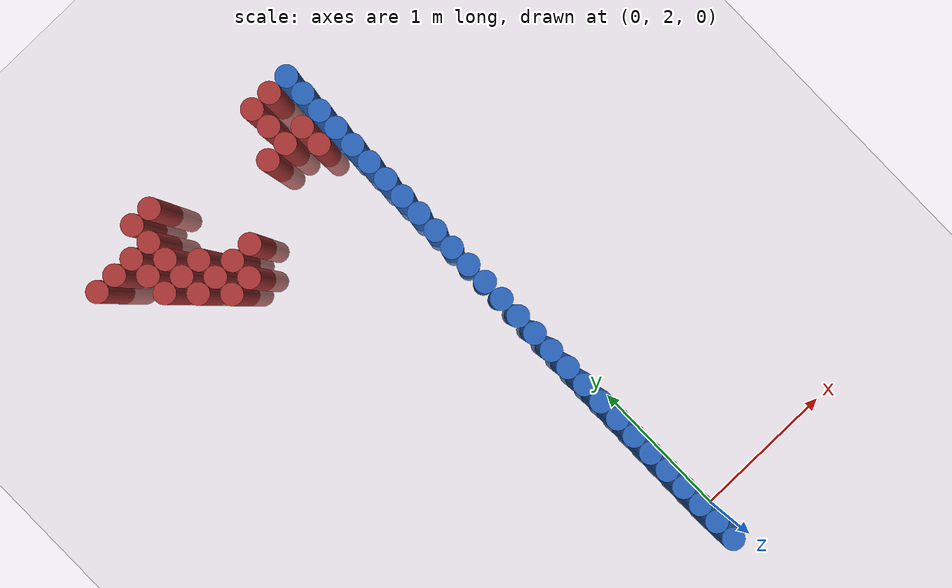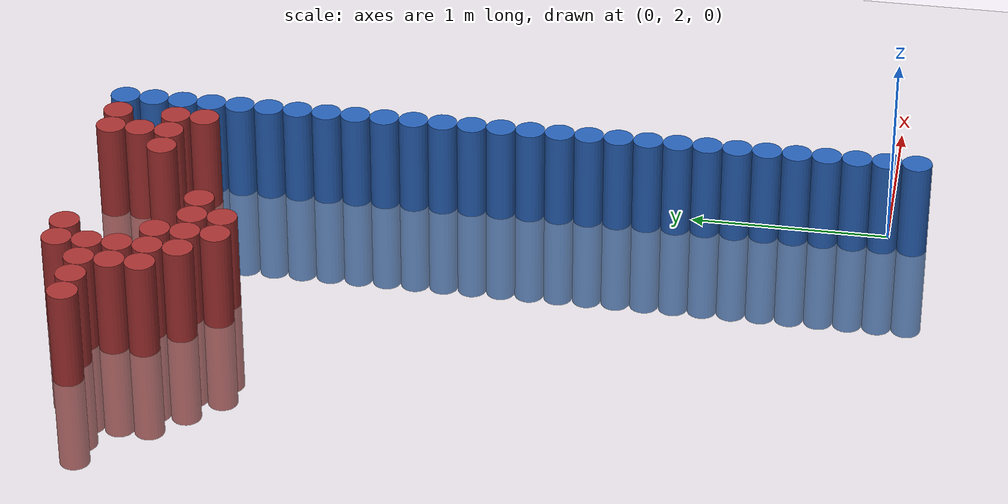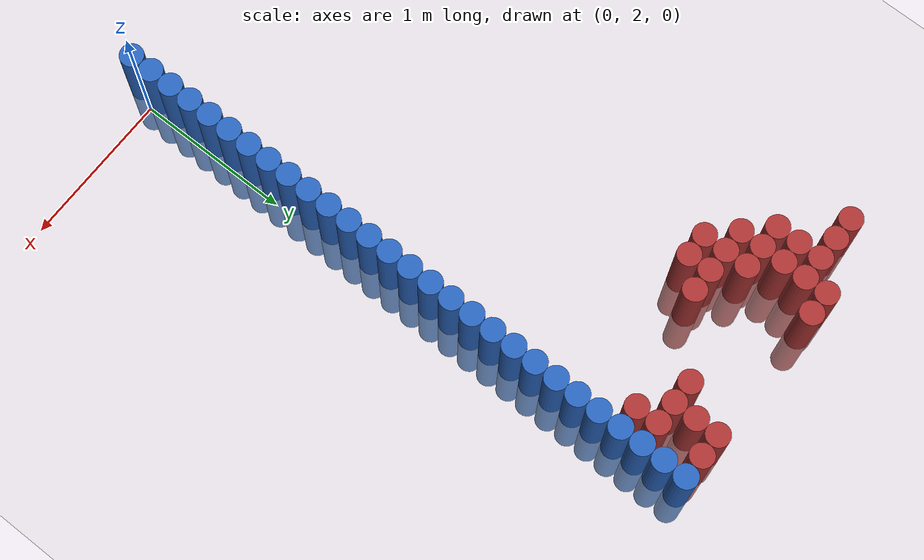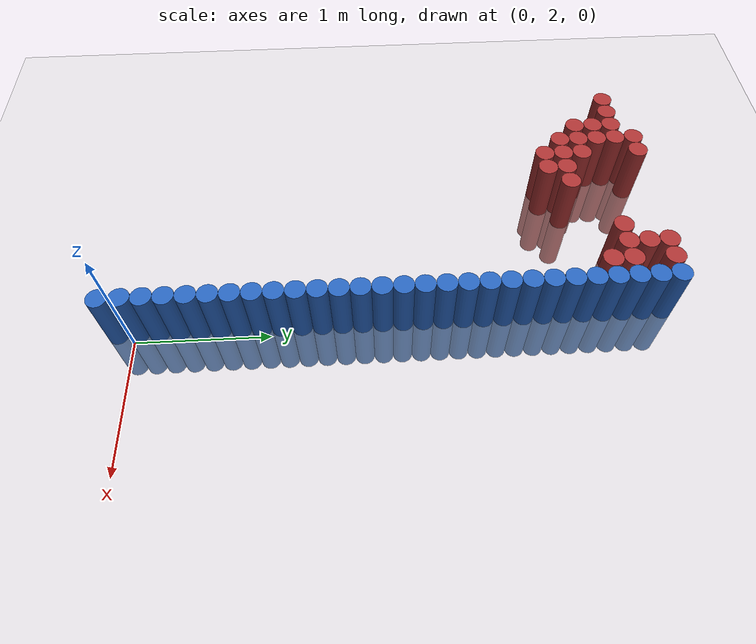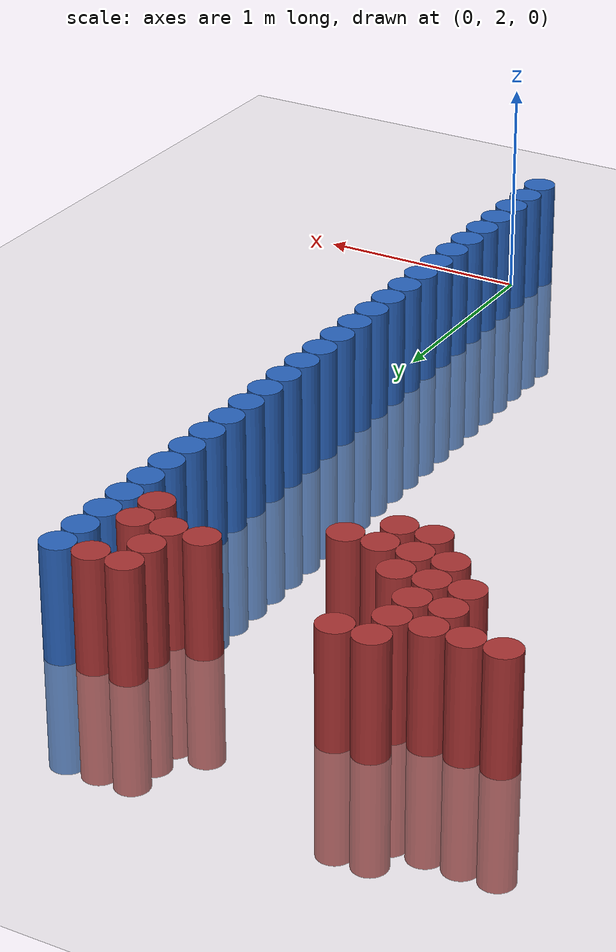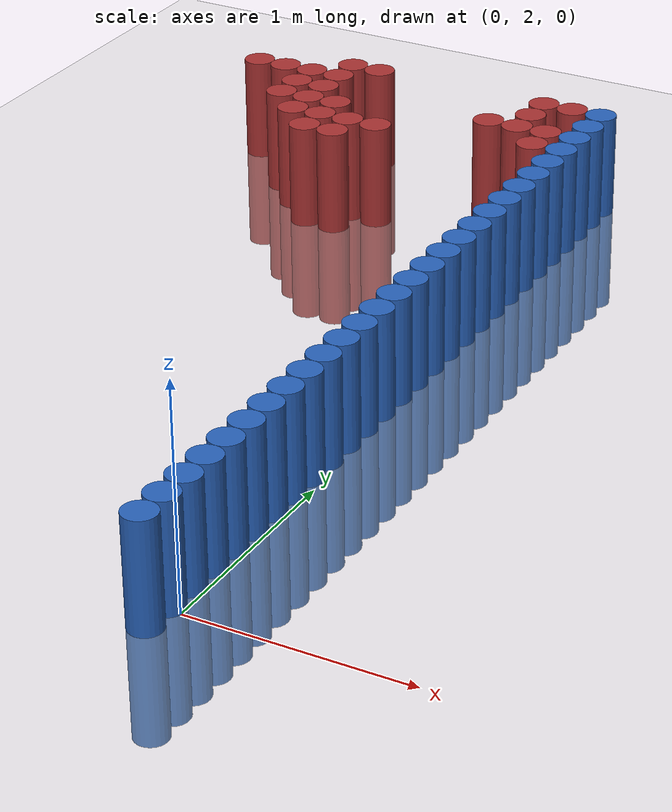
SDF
<sdf version="1.6">
 <world name="default">
  <model name="ground_plane">
   <static>1</static>
   <link name="link">
    <collision name="collision">
     <geometry><plane><normal>0 0 1</normal><size>100 100</size></plane></geometry>
     <surface><friction><ode><mu>100</mu><mu2>50</mu2></ode></friction></surface>
    </collision>
    <visual name="visual">
     <cast_shadows>0</cast_shadows>
     <geometry><plane><normal>0 0 1</normal><size>100 100</size></plane></geometry>
     <material>
      <script><uri>file://media/materials/scripts/gazebo.material</uri><name>Gazebo/Grey</name></script>
     </material>
    </visual>
   </link>
  </model>
  <model name="unit_cylinder_52">
   <static>1</static>
   <pose>-0.075000 1.875000 0.000000 0.000000 0.000000 0.000000</pose>
   <link name="link">
    <inertial>
     <mass>1</mass>
     <inertia><ixx>0.145833</ixx><ixy>0</ixy><ixz>0</ixz><iyy>0.145833</iyy><iyz>0</iyz><izz>0.125</izz></inertia>
    </inertial>
    <collision name="collision">
     <geometry><cylinder><radius>0.075000</radius><length>1</length></cylinder></geometry>
    </collision>
    <visual name="visual">
     <geometry><cylinder><radius>0.075000</radius><length>1</length></cylinder></geometry>
     <material>
      <ambient>0.152000 0.379000 0.720000 1</ambient>
      <diffuse>0.152000 0.379000 0.720000 1</diffuse>
     </material>
     <material>
      <script><name>Gazebo/Grey</name><uri>file://media/materials/scripts/gazebo.material</uri></script>
     </material>
    </visual>
   </link>
  </model>
  <model name="unit_cylinder_54">
   <static>1</static>
   <pose>-0.075000 2.025000 0.000000 0.000000 0.000000 0.000000</pose>
   <link name="link">
    <inertial>
     <mass>1</mass>
     <inertia><ixx>0.145833</ixx><ixy>0</ixy><ixz>0</ixz><iyy>0.145833</iyy><iyz>0</iyz><izz>0.125</izz></inertia>
    </inertial>
    <collision name="collision">
     <geometry><cylinder><radius>0.075000</radius><length>1</length></cylinder></geometry>
    </collision>
    <visual name="visual">
     <geometry><cylinder><radius>0.075000</radius><length>1</length></cylinder></geometry>
     <material>
      <ambient>0.152000 0.379000 0.720000 1</ambient>
      <diffuse>0.152000 0.379000 0.720000 1</diffuse>
     </material>
     <material>
      <script><name>Gazebo/Grey</name><uri>file://media/materials/scripts/gazebo.material</uri></script>
     </material>
    </visual>
   </link>
  </model>
  <model name="unit_cylinder_56">
   <static>1</static>
   <pose>-0.075000 2.175000 0.000000 0.000000 0.000000 0.000000</pose>
   <link name="link">
    <inertial>
     <mass>1</mass>
     <inertia><ixx>0.145833</ixx><ixy>0</ixy><ixz>0</ixz><iyy>0.145833</iyy><iyz>0</iyz><izz>0.125</izz></inertia>
    </inertial>
    <collision name="collision">
     <geometry><cylinder><radius>0.075000</radius><length>1</length></cylinder></geometry>
    </collision>
    <visual name="visual">
     <geometry><cylinder><radius>0.075000</radius><length>1</length></cylinder></geometry>
     <material>
      <ambient>0.152000 0.379000 0.720000 1</ambient>
      <diffuse>0.152000 0.379000 0.720000 1</diffuse>
     </material>
     <material>
      <script><name>Gazebo/Grey</name><uri>file://media/materials/scripts/gazebo.material</uri></script>
     </material>
    </visual>
   </link>
  </model>
  <model name="unit_cylinder_58">
   <static>1</static>
   <pose>-0.075000 2.325000 0.000000 0.000000 0.000000 0.000000</pose>
   <link name="link">
    <inertial>
     <mass>1</mass>
     <inertia><ixx>0.145833</ixx><ixy>0</ixy><ixz>0</ixz><iyy>0.145833</iyy><iyz>0</iyz><izz>0.125</izz></inertia>
    </inertial>
    <collision name="collision">
     <geometry><cylinder><radius>0.075000</radius><length>1</length></cylinder></geometry>
    </collision>
    <visual name="visual">
     <geometry><cylinder><radius>0.075000</radius><length>1</length></cylinder></geometry>
     <material>
      <ambient>0.152000 0.379000 0.720000 1</ambient>
      <diffuse>0.152000 0.379000 0.720000 1</diffuse>
     </material>
     <material>
      <script><name>Gazebo/Grey</name><uri>file://media/materials/scripts/gazebo.material</uri></script>
     </material>
    </visual>
   </link>
  </model>
  <model name="unit_cylinder_60">
   <static>1</static>
   <pose>-0.075000 2.475000 0.000000 0.000000 0.000000 0.000000</pose>
   <link name="link">
    <inertial>
     <mass>1</mass>
     <inertia><ixx>0.145833</ixx><ixy>0</ixy><ixz>0</ixz><iyy>0.145833</iyy><iyz>0</iyz><izz>0.125</izz></inertia>
    </inertial>
    <collision name="collision">
     <geometry><cylinder><radius>0.075000</radius><length>1</length></cylinder></geometry>
    </collision>
    <visual name="visual">
     <geometry><cylinder><radius>0.075000</radius><length>1</length></cylinder></geometry>
     <material>
      <ambient>0.152000 0.379000 0.720000 1</ambient>
      <diffuse>0.152000 0.379000 0.720000 1</diffuse>
     </material>
     <material>
      <script><name>Gazebo/Grey</name><uri>file://media/materials/scripts/gazebo.material</uri></script>
     </material>
    </visual>
   </link>
  </model>
  <model name="unit_cylinder_62">
   <static>1</static>
   <pose>-0.075000 2.625000 0.000000 0.000000 0.000000 0.000000</pose>
   <link name="link">
    <inertial>
     <mass>1</mass>
     <inertia><ixx>0.145833</ixx><ixy>0</ixy><ixz>0</ixz><iyy>0.145833</iyy><iyz>0</iyz><izz>0.125</izz></inertia>
    </inertial>
    <collision name="collision">
     <geometry><cylinder><radius>0.075000</radius><length>1</length></cylinder></geometry>
    </collision>
    <visual name="visual">
     <geometry><cylinder><radius>0.075000</radius><length>1</length></cylinder></geometry>
     <material>
      <ambient>0.152000 0.379000 0.720000 1</ambient>
      <diffuse>0.152000 0.379000 0.720000 1</diffuse>
     </material>
     <material>
      <script><name>Gazebo/Grey</name><uri>file://media/materials/scripts/gazebo.material</uri></script>
     </material>
    </visual>
   </link>
  </model>
  <model name="unit_cylinder_64">
   <static>1</static>
   <pose>-0.075000 2.775000 0.000000 0.000000 0.000000 0.000000</pose>
   <link name="link">
    <inertial>
     <mass>1</mass>
     <inertia><ixx>0.145833</ixx><ixy>0</ixy><ixz>0</ixz><iyy>0.145833</iyy><iyz>0</iyz><izz>0.125</izz></inertia>
    </inertial>
    <collision name="collision">
     <geometry><cylinder><radius>0.075000</radius><length>1</length></cylinder></geometry>
    </collision>
    <visual name="visual">
     <geometry><cylinder><radius>0.075000</radius><length>1</length></cylinder></geometry>
     <material>
      <ambient>0.152000 0.379000 0.720000 1</ambient>
      <diffuse>0.152000 0.379000 0.720000 1</diffuse>
     </material>
     <material>
      <script><name>Gazebo/Grey</name><uri>file://media/materials/scripts/gazebo.material</uri></script>
     </material>
    </visual>
   </link>
  </model>
  <model name="unit_cylinder_66">
   <static>1</static>
   <pose>-0.075000 2.925000 0.000000 0.000000 0.000000 0.000000</pose>
   <link name="link">
    <inertial>
     <mass>1</mass>
     <inertia><ixx>0.145833</ixx><ixy>0</ixy><ixz>0</ixz><iyy>0.145833</iyy><iyz>0</iyz><izz>0.125</izz></inertia>
    </inertial>
    <collision name="collision">
     <geometry><cylinder><radius>0.075000</radius><length>1</length></cylinder></geometry>
    </collision>
    <visual name="visual">
     <geometry><cylinder><radius>0.075000</radius><length>1</length></cylinder></geometry>
     <material>
      <ambient>0.152000 0.379000 0.720000 1</ambient>
      <diffuse>0.152000 0.379000 0.720000 1</diffuse>
     </material>
     <material>
      <script><name>Gazebo/Grey</name><uri>file://media/materials/scripts/gazebo.material</uri></script>
     </material>
    </visual>
   </link>
  </model>
  <model name="unit_cylinder_68">
   <static>1</static>
   <pose>-0.075000 3.075000 0.000000 0.000000 0.000000 0.000000</pose>
   <link name="link">
    <inertial>
     <mass>1</mass>
     <inertia><ixx>0.145833</ixx><ixy>0</ixy><ixz>0</ixz><iyy>0.145833</iyy><iyz>0</iyz><izz>0.125</izz></inertia>
    </inertial>
    <collision name="collision">
     <geometry><cylinder><radius>0.075000</radius><length>1</length></cylinder></geometry>
    </collision>
    <visual name="visual">
     <geometry><cylinder><radius>0.075000</radius><length>1</length></cylinder></geometry>
     <material>
      <ambient>0.152000 0.379000 0.720000 1</ambient>
      <diffuse>0.152000 0.379000 0.720000 1</diffuse>
     </material>
     <material>
      <script><name>Gazebo/Grey</name><uri>file://media/materials/scripts/gazebo.material</uri></script>
     </material>
    </visual>
   </link>
  </model>
  <model name="unit_cylinder_70">
   <static>1</static>
   <pose>-0.075000 3.225000 0.000000 0.000000 0.000000 0.000000</pose>
   <link name="link">
    <inertial>
     <mass>1</mass>
     <inertia><ixx>0.145833</ixx><ixy>0</ixy><ixz>0</ixz><iyy>0.145833</iyy><iyz>0</iyz><izz>0.125</izz></inertia>
    </inertial>
    <collision name="collision">
     <geometry><cylinder><radius>0.075000</radius><length>1</length></cylinder></geometry>
    </collision>
    <visual name="visual">
     <geometry><cylinder><radius>0.075000</radius><length>1</length></cylinder></geometry>
     <material>
      <ambient>0.152000 0.379000 0.720000 1</ambient>
      <diffuse>0.152000 0.379000 0.720000 1</diffuse>
     </material>
     <material>
      <script><name>Gazebo/Grey</name><uri>file://media/materials/scripts/gazebo.material</uri></script>
     </material>
    </visual>
   </link>
  </model>
  <model name="unit_cylinder_72">
   <static>1</static>
   <pose>-0.075000 3.375000 0.000000 0.000000 0.000000 0.000000</pose>
   <link name="link">
    <inertial>
     <mass>1</mass>
     <inertia><ixx>0.145833</ixx><ixy>0</ixy><ixz>0</ixz><iyy>0.145833</iyy><iyz>0</iyz><izz>0.125</izz></inertia>
    </inertial>
    <collision name="collision">
     <geometry><cylinder><radius>0.075000</radius><length>1</length></cylinder></geometry>
    </collision>
    <visual name="visual">
     <geometry><cylinder><radius>0.075000</radius><length>1</length></cylinder></geometry>
     <material>
      <ambient>0.152000 0.379000 0.720000 1</ambient>
      <diffuse>0.152000 0.379000 0.720000 1</diffuse>
     </material>
     <material>
      <script><name>Gazebo/Grey</name><uri>file://media/materials/scripts/gazebo.material</uri></script>
     </material>
    </visual>
   </link>
  </model>
  <model name="unit_cylinder_74">
   <static>1</static>
   <pose>-0.075000 3.525000 0.000000 0.000000 0.000000 0.000000</pose>
   <link name="link">
    <inertial>
     <mass>1</mass>
     <inertia><ixx>0.145833</ixx><ixy>0</ixy><ixz>0</ixz><iyy>0.145833</iyy><iyz>0</iyz><izz>0.125</izz></inertia>
    </inertial>
    <collision name="collision">
     <geometry><cylinder><radius>0.075000</radius><length>1</length></cylinder></geometry>
    </collision>
    <visual name="visual">
     <geometry><cylinder><radius>0.075000</radius><length>1</length></cylinder></geometry>
     <material>
      <ambient>0.152000 0.379000 0.720000 1</ambient>
      <diffuse>0.152000 0.379000 0.720000 1</diffuse>
     </material>
     <material>
      <script><name>Gazebo/Grey</name><uri>file://media/materials/scripts/gazebo.material</uri></script>
     </material>
    </visual>
   </link>
  </model>
  <model name="unit_cylinder_76">
   <static>1</static>
   <pose>-0.075000 3.675000 0.000000 0.000000 0.000000 0.000000</pose>
   <link name="link">
    <inertial>
     <mass>1</mass>
     <inertia><ixx>0.145833</ixx><ixy>0</ixy><ixz>0</ixz><iyy>0.145833</iyy><iyz>0</iyz><izz>0.125</izz></inertia>
    </inertial>
    <collision name="collision">
     <geometry><cylinder><radius>0.075000</radius><length>1</length></cylinder></geometry>
    </collision>
    <visual name="visual">
     <geometry><cylinder><radius>0.075000</radius><length>1</length></cylinder></geometry>
     <material>
      <ambient>0.152000 0.379000 0.720000 1</ambient>
      <diffuse>0.152000 0.379000 0.720000 1</diffuse>
     </material>
     <material>
      <script><name>Gazebo/Grey</name><uri>file://media/materials/scripts/gazebo.material</uri></script>
     </material>
    </visual>
   </link>
  </model>
  <model name="unit_cylinder_78">
   <static>1</static>
   <pose>-0.075000 3.825000 0.000000 0.000000 0.000000 0.000000</pose>
   <link name="link">
    <inertial>
     <mass>1</mass>
     <inertia><ixx>0.145833</ixx><ixy>0</ixy><ixz>0</ixz><iyy>0.145833</iyy><iyz>0</iyz><izz>0.125</izz></inertia>
    </inertial>
    <collision name="collision">
     <geometry><cylinder><radius>0.075000</radius><length>1</length></cylinder></geometry>
    </collision>
    <visual name="visual">
     <geometry><cylinder><radius>0.075000</radius><length>1</length></cylinder></geometry>
     <material>
      <ambient>0.152000 0.379000 0.720000 1</ambient>
      <diffuse>0.152000 0.379000 0.720000 1</diffuse>
     </material>
     <material>
      <script><name>Gazebo/Grey</name><uri>file://media/materials/scripts/gazebo.material</uri></script>
     </material>
    </visual>
   </link>
  </model>
  <model name="unit_cylinder_80">
   <static>1</static>
   <pose>-0.075000 3.975000 0.000000 0.000000 0.000000 0.000000</pose>
   <link name="link">
    <inertial>
     <mass>1</mass>
     <inertia><ixx>0.145833</ixx><ixy>0</ixy><ixz>0</ixz><iyy>0.145833</iyy><iyz>0</iyz><izz>0.125</izz></inertia>
    </inertial>
    <collision name="collision">
     <geometry><cylinder><radius>0.075000</radius><length>1</length></cylinder></geometry>
    </collision>
    <visual name="visual">
     <geometry><cylinder><radius>0.075000</radius><length>1</length></cylinder></geometry>
     <material>
      <ambient>0.152000 0.379000 0.720000 1</ambient>
      <diffuse>0.152000 0.379000 0.720000 1</diffuse>
     </material>
     <material>
      <script><name>Gazebo/Grey</name><uri>file://media/materials/scripts/gazebo.material</uri></script>
     </material>
    </visual>
   </link>
  </model>
  <model name="unit_cylinder_82">
   <static>1</static>
   <pose>-0.075000 4.125000 0.000000 0.000000 0.000000 0.000000</pose>
   <link name="link">
    <inertial>
     <mass>1</mass>
     <inertia><ixx>0.145833</ixx><ixy>0</ixy><ixz>0</ixz><iyy>0.145833</iyy><iyz>0</iyz><izz>0.125</izz></inertia>
    </inertial>
    <collision name="collision">
     <geometry><cylinder><radius>0.075000</radius><length>1</length></cylinder></geometry>
    </collision>
    <visual name="visual">
     <geometry><cylinder><radius>0.075000</radius><length>1</length></cylinder></geometry>
     <material>
      <ambient>0.152000 0.379000 0.720000 1</ambient>
      <diffuse>0.152000 0.379000 0.720000 1</diffuse>
     </material>
     <material>
      <script><name>Gazebo/Grey</name><uri>file://media/materials/scripts/gazebo.material</uri></script>
     </material>
    </visual>
   </link>
  </model>
  <model name="unit_cylinder_84">
   <static>1</static>
   <pose>-0.075000 4.275000 0.000000 0.000000 0.000000 0.000000</pose>
   <link name="link">
    <inertial>
     <mass>1</mass>
     <inertia><ixx>0.145833</ixx><ixy>0</ixy><ixz>0</ixz><iyy>0.145833</iyy><iyz>0</iyz><izz>0.125</izz></inertia>
    </inertial>
    <collision name="collision">
     <geometry><cylinder><radius>0.075000</radius><length>1</length></cylinder></geometry>
    </collision>
    <visual name="visual">
     <geometry><cylinder><radius>0.075000</radius><length>1</length></cylinder></geometry>
     <material>
      <ambient>0.152000 0.379000 0.720000 1</ambient>
      <diffuse>0.152000 0.379000 0.720000 1</diffuse>
     </material>
     <material>
      <script><name>Gazebo/Grey</name><uri>file://media/materials/scripts/gazebo.material</uri></script>
     </material>
    </visual>
   </link>
  </model>
  <model name="unit_cylinder_86">
   <static>1</static>
   <pose>-0.075000 4.425000 0.000000 0.000000 0.000000 0.000000</pose>
   <link name="link">
    <inertial>
     <mass>1</mass>
     <inertia><ixx>0.145833</ixx><ixy>0</ixy><ixz>0</ixz><iyy>0.145833</iyy><iyz>0</iyz><izz>0.125</izz></inertia>
    </inertial>
    <collision name="collision">
     <geometry><cylinder><radius>0.075000</radius><length>1</length></cylinder></geometry>
    </collision>
    <visual name="visual">
     <geometry><cylinder><radius>0.075000</radius><length>1</length></cylinder></geometry>
     <material>
      <ambient>0.152000 0.379000 0.720000 1</ambient>
      <diffuse>0.152000 0.379000 0.720000 1</diffuse>
     </material>
     <material>
      <script><name>Gazebo/Grey</name><uri>file://media/materials/scripts/gazebo.material</uri></script>
     </material>
    </visual>
   </link>
  </model>
  <model name="unit_cylinder_88">
   <static>1</static>
   <pose>-0.075000 4.575000 0.000000 0.000000 0.000000 0.000000</pose>
   <link name="link">
    <inertial>
     <mass>1</mass>
     <inertia><ixx>0.145833</ixx><ixy>0</ixy><ixz>0</ixz><iyy>0.145833</iyy><iyz>0</iyz><izz>0.125</izz></inertia>
    </inertial>
    <collision name="collision">
     <geometry><cylinder><radius>0.075000</radius><length>1</length></cylinder></geometry>
    </collision>
    <visual name="visual">
     <geometry><cylinder><radius>0.075000</radius><length>1</length></cylinder></geometry>
     <material>
      <ambient>0.152000 0.379000 0.720000 1</ambient>
      <diffuse>0.152000 0.379000 0.720000 1</diffuse>
     </material>
     <material>
      <script><name>Gazebo/Grey</name><uri>file://media/materials/scripts/gazebo.material</uri></script>
     </material>
    </visual>
   </link>
  </model>
  <model name="unit_cylinder_90">
   <static>1</static>
   <pose>-0.075000 4.725000 0.000000 0.000000 0.000000 0.000000</pose>
   <link name="link">
    <inertial>
     <mass>1</mass>
     <inertia><ixx>0.145833</ixx><ixy>0</ixy><ixz>0</ixz><iyy>0.145833</iyy><iyz>0</iyz><izz>0.125</izz></inertia>
    </inertial>
    <collision name="collision">
     <geometry><cylinder><radius>0.075000</radius><length>1</length></cylinder></geometry>
    </collision>
    <visual name="visual">
     <geometry><cylinder><radius>0.075000</radius><length>1</length></cylinder></geometry>
     <material>
      <ambient>0.152000 0.379000 0.720000 1</ambient>
      <diffuse>0.152000 0.379000 0.720000 1</diffuse>
     </material>
     <material>
      <script><name>Gazebo/Grey</name><uri>file://media/materials/scripts/gazebo.material</uri></script>
     </material>
    </visual>
   </link>
  </model>
  <model name="unit_cylinder_92">
   <static>1</static>
   <pose>-0.075000 4.875000 0.000000 0.000000 0.000000 0.000000</pose>
   <link name="link">
    <inertial>
     <mass>1</mass>
     <inertia><ixx>0.145833</ixx><ixy>0</ixy><ixz>0</ixz><iyy>0.145833</iyy><iyz>0</iyz><izz>0.125</izz></inertia>
    </inertial>
    <collision name="collision">
     <geometry><cylinder><radius>0.075000</radius><length>1</length></cylinder></geometry>
    </collision>
    <visual name="visual">
     <geometry><cylinder><radius>0.075000</radius><length>1</length></cylinder></geometry>
     <material>
      <ambient>0.152000 0.379000 0.720000 1</ambient>
      <diffuse>0.152000 0.379000 0.720000 1</diffuse>
     </material>
     <material>
      <script><name>Gazebo/Grey</name><uri>file://media/materials/scripts/gazebo.material</uri></script>
     </material>
    </visual>
   </link>
  </model>
  <model name="unit_cylinder_94">
   <static>1</static>
   <pose>-0.075000 5.025000 0.000000 0.000000 0.000000 0.000000</pose>
   <link name="link">
    <inertial>
     <mass>1</mass>
     <inertia><ixx>0.145833</ixx><ixy>0</ixy><ixz>0</ixz><iyy>0.145833</iyy><iyz>0</iyz><izz>0.125</izz></inertia>
    </inertial>
    <collision name="collision">
     <geometry><cylinder><radius>0.075000</radius><length>1</length></cylinder></geometry>
    </collision>
    <visual name="visual">
     <geometry><cylinder><radius>0.075000</radius><length>1</length></cylinder></geometry>
     <material>
      <ambient>0.152000 0.379000 0.720000 1</ambient>
      <diffuse>0.152000 0.379000 0.720000 1</diffuse>
     </material>
     <material>
      <script><name>Gazebo/Grey</name><uri>file://media/materials/scripts/gazebo.material</uri></script>
     </material>
    </visual>
   </link>
  </model>
  <model name="unit_cylinder_225">
   <static>1</static>
   <pose>-1.875000 5.775000 0.000000 0.000000 0.000000 0.000000</pose>
   <link name="link">
    <inertial>
     <mass>1</mass>
     <inertia><ixx>0.145833</ixx><ixy>0</ixy><ixz>0</ixz><iyy>0.145833</iyy><iyz>0</iyz><izz>0.125</izz></inertia>
    </inertial>
    <collision name="collision">
     <geometry><cylinder><radius>0.075000</radius><length>1</length></cylinder></geometry>
    </collision>
    <visual name="visual">
     <geometry><cylinder><radius>0.075000</radius><length>1</length></cylinder></geometry>
     <material>
      <ambient>0.648000 0.192000 0.192000 1</ambient>
      <diffuse>0.648000 0.192000 0.192000 1</diffuse>
     </material>
     <material>
      <script><name>Gazebo/Grey</name><uri>file://media/materials/scripts/gazebo.material</uri></script>
     </material>
    </visual>
   </link>
  </model>
  <model name="unit_cylinder_234">
   <static>1</static>
   <pose>-1.725000 5.775000 0.000000 0.000000 0.000000 0.000000</pose>
   <link name="link">
    <inertial>
     <mass>1</mass>
     <inertia><ixx>0.145833</ixx><ixy>0</ixy><ixz>0</ixz><iyy>0.145833</iyy><iyz>0</iyz><izz>0.125</izz></inertia>
    </inertial>
    <collision name="collision">
     <geometry><cylinder><radius>0.075000</radius><length>1</length></cylinder></geometry>
    </collision>
    <visual name="visual">
     <geometry><cylinder><radius>0.075000</radius><length>1</length></cylinder></geometry>
     <material>
      <ambient>0.648000 0.192000 0.192000 1</ambient>
      <diffuse>0.648000 0.192000 0.192000 1</diffuse>
     </material>
     <material>
      <script><name>Gazebo/Grey</name><uri>file://media/materials/scripts/gazebo.material</uri></script>
     </material>
    </visual>
   </link>
  </model>
  <model name="unit_cylinder_241">
   <static>1</static>
   <pose>-1.575000 5.475000 0.000000 0.000000 0.000000 0.000000</pose>
   <link name="link">
    <inertial>
     <mass>1</mass>
     <inertia><ixx>0.145833</ixx><ixy>0</ixy><ixz>0</ixz><iyy>0.145833</iyy><iyz>0</iyz><izz>0.125</izz></inertia>
    </inertial>
    <collision name="collision">
     <geometry><cylinder><radius>0.075000</radius><length>1</length></cylinder></geometry>
    </collision>
    <visual name="visual">
     <geometry><cylinder><radius>0.075000</radius><length>1</length></cylinder></geometry>
     <material>
      <ambient>0.648000 0.192000 0.192000 1</ambient>
      <diffuse>0.648000 0.192000 0.192000 1</diffuse>
     </material>
     <material>
      <script><name>Gazebo/Grey</name><uri>file://media/materials/scripts/gazebo.material</uri></script>
     </material>
    </visual>
   </link>
  </model>
  <model name="unit_cylinder_242">
   <static>1</static>
   <pose>-1.575000 5.625000 0.000000 0.000000 0.000000 0.000000</pose>
   <link name="link">
    <inertial>
     <mass>1</mass>
     <inertia><ixx>0.145833</ixx><ixy>0</ixy><ixz>0</ixz><iyy>0.145833</iyy><iyz>0</iyz><izz>0.125</izz></inertia>
    </inertial>
    <collision name="collision">
     <geometry><cylinder><radius>0.075000</radius><length>1</length></cylinder></geometry>
    </collision>
    <visual name="visual">
     <geometry><cylinder><radius>0.075000</radius><length>1</length></cylinder></geometry>
     <material>
      <ambient>0.648000 0.192000 0.192000 1</ambient>
      <diffuse>0.648000 0.192000 0.192000 1</diffuse>
     </material>
     <material>
      <script><name>Gazebo/Grey</name><uri>file://media/materials/scripts/gazebo.material</uri></script>
     </material>
    </visual>
   </link>
  </model>
  <model name="unit_cylinder_243">
   <static>1</static>
   <pose>-1.575000 5.775000 0.000000 0.000000 0.000000 0.000000</pose>
   <link name="link">
    <inertial>
     <mass>1</mass>
     <inertia><ixx>0.145833</ixx><ixy>0</ixy><ixz>0</ixz><iyy>0.145833</iyy><iyz>0</iyz><izz>0.125</izz></inertia>
    </inertial>
    <collision name="collision">
     <geometry><cylinder><radius>0.075000</radius><length>1</length></cylinder></geometry>
    </collision>
    <visual name="visual">
     <geometry><cylinder><radius>0.075000</radius><length>1</length></cylinder></geometry>
     <material>
      <ambient>0.648000 0.192000 0.192000 1</ambient>
      <diffuse>0.648000 0.192000 0.192000 1</diffuse>
     </material>
     <material>
      <script><name>Gazebo/Grey</name><uri>file://media/materials/scripts/gazebo.material</uri></script>
     </material>
    </visual>
   </link>
  </model>
  <model name="unit_cylinder_249">
   <static>1</static>
   <pose>-1.425000 5.325000 0.000000 0.000000 0.000000 0.000000</pose>
   <link name="link">
    <inertial>
     <mass>1</mass>
     <inertia><ixx>0.145833</ixx><ixy>0</ixy><ixz>0</ixz><iyy>0.145833</iyy><iyz>0</iyz><izz>0.125</izz></inertia>
    </inertial>
    <collision name="collision">
     <geometry><cylinder><radius>0.075000</radius><length>1</length></cylinder></geometry>
    </collision>
    <visual name="visual">
     <geometry><cylinder><radius>0.075000</radius><length>1</length></cylinder></geometry>
     <material>
      <ambient>0.648000 0.192000 0.192000 1</ambient>
      <diffuse>0.648000 0.192000 0.192000 1</diffuse>
     </material>
     <material>
      <script><name>Gazebo/Grey</name><uri>file://media/materials/scripts/gazebo.material</uri></script>
     </material>
    </visual>
   </link>
  </model>
  <model name="unit_cylinder_250">
   <static>1</static>
   <pose>-1.425000 5.475000 0.000000 0.000000 0.000000 0.000000</pose>
   <link name="link">
    <inertial>
     <mass>1</mass>
     <inertia><ixx>0.145833</ixx><ixy>0</ixy><ixz>0</ixz><iyy>0.145833</iyy><iyz>0</iyz><izz>0.125</izz></inertia>
    </inertial>
    <collision name="collision">
     <geometry><cylinder><radius>0.075000</radius><length>1</length></cylinder></geometry>
    </collision>
    <visual name="visual">
     <geometry><cylinder><radius>0.075000</radius><length>1</length></cylinder></geometry>
     <material>
      <ambient>0.648000 0.192000 0.192000 1</ambient>
      <diffuse>0.648000 0.192000 0.192000 1</diffuse>
     </material>
     <material>
      <script><name>Gazebo/Grey</name><uri>file://media/materials/scripts/gazebo.material</uri></script>
     </material>
    </visual>
   </link>
  </model>
  <model name="unit_cylinder_251">
   <static>1</static>
   <pose>-1.425000 5.625000 0.000000 0.000000 0.000000 0.000000</pose>
   <link name="link">
    <inertial>
     <mass>1</mass>
     <inertia><ixx>0.145833</ixx><ixy>0</ixy><ixz>0</ixz><iyy>0.145833</iyy><iyz>0</iyz><izz>0.125</izz></inertia>
    </inertial>
    <collision name="collision">
     <geometry><cylinder><radius>0.075000</radius><length>1</length></cylinder></geometry>
    </collision>
    <visual name="visual">
     <geometry><cylinder><radius>0.075000</radius><length>1</length></cylinder></geometry>
     <material>
      <ambient>0.648000 0.192000 0.192000 1</ambient>
      <diffuse>0.648000 0.192000 0.192000 1</diffuse>
     </material>
     <material>
      <script><name>Gazebo/Grey</name><uri>file://media/materials/scripts/gazebo.material</uri></script>
     </material>
    </visual>
   </link>
  </model>
  <model name="unit_cylinder_252">
   <static>1</static>
   <pose>-1.425000 5.775000 0.000000 0.000000 0.000000 0.000000</pose>
   <link name="link">
    <inertial>
     <mass>1</mass>
     <inertia><ixx>0.145833</ixx><ixy>0</ixy><ixz>0</ixz><iyy>0.145833</iyy><iyz>0</iyz><izz>0.125</izz></inertia>
    </inertial>
    <collision name="collision">
     <geometry><cylinder><radius>0.075000</radius><length>1</length></cylinder></geometry>
    </collision>
    <visual name="visual">
     <geometry><cylinder><radius>0.075000</radius><length>1</length></cylinder></geometry>
     <material>
      <ambient>0.648000 0.192000 0.192000 1</ambient>
      <diffuse>0.648000 0.192000 0.192000 1</diffuse>
     </material>
     <material>
      <script><name>Gazebo/Grey</name><uri>file://media/materials/scripts/gazebo.material</uri></script>
     </material>
    </visual>
   </link>
  </model>
  <model name="unit_cylinder_253">
   <static>1</static>
   <pose>-1.425000 5.925000 0.000000 0.000000 0.000000 0.000000</pose>
   <link name="link">
    <inertial>
     <mass>1</mass>
     <inertia><ixx>0.145833</ixx><ixy>0</ixy><ixz>0</ixz><iyy>0.145833</iyy><iyz>0</iyz><izz>0.125</izz></inertia>
    </inertial>
    <collision name="collision">
     <geometry><cylinder><radius>0.075000</radius><length>1</length></cylinder></geometry>
    </collision>
    <visual name="visual">
     <geometry><cylinder><radius>0.075000</radius><length>1</length></cylinder></geometry>
     <material>
      <ambient>0.648000 0.192000 0.192000 1</ambient>
      <diffuse>0.648000 0.192000 0.192000 1</diffuse>
     </material>
     <material>
      <script><name>Gazebo/Grey</name><uri>file://media/materials/scripts/gazebo.material</uri></script>
     </material>
    </visual>
   </link>
  </model>
  <model name="unit_cylinder_257">
   <static>1</static>
   <pose>-1.275000 5.175000 0.000000 0.000000 0.000000 0.000000</pose>
   <link name="link">
    <inertial>
     <mass>1</mass>
     <inertia><ixx>0.145833</ixx><ixy>0</ixy><ixz>0</ixz><iyy>0.145833</iyy><iyz>0</iyz><izz>0.125</izz></inertia>
    </inertial>
    <collision name="collision">
     <geometry><cylinder><radius>0.075000</radius><length>1</length></cylinder></geometry>
    </collision>
    <visual name="visual">
     <geometry><cylinder><radius>0.075000</radius><length>1</length></cylinder></geometry>
     <material>
      <ambient>0.648000 0.192000 0.192000 1</ambient>
      <diffuse>0.648000 0.192000 0.192000 1</diffuse>
     </material>
     <material>
      <script><name>Gazebo/Grey</name><uri>file://media/materials/scripts/gazebo.material</uri></script>
     </material>
    </visual>
   </link>
  </model>
  <model name="unit_cylinder_258">
   <static>1</static>
   <pose>-1.275000 5.325000 0.000000 0.000000 0.000000 0.000000</pose>
   <link name="link">
    <inertial>
     <mass>1</mass>
     <inertia><ixx>0.145833</ixx><ixy>0</ixy><ixz>0</ixz><iyy>0.145833</iyy><iyz>0</iyz><izz>0.125</izz></inertia>
    </inertial>
    <collision name="collision">
     <geometry><cylinder><radius>0.075000</radius><length>1</length></cylinder></geometry>
    </collision>
    <visual name="visual">
     <geometry><cylinder><radius>0.075000</radius><length>1</length></cylinder></geometry>
     <material>
      <ambient>0.648000 0.192000 0.192000 1</ambient>
      <diffuse>0.648000 0.192000 0.192000 1</diffuse>
     </material>
     <material>
      <script><name>Gazebo/Grey</name><uri>file://media/materials/scripts/gazebo.material</uri></script>
     </material>
    </visual>
   </link>
  </model>
  <model name="unit_cylinder_259">
   <static>1</static>
   <pose>-1.275000 5.475000 0.000000 0.000000 0.000000 0.000000</pose>
   <link name="link">
    <inertial>
     <mass>1</mass>
     <inertia><ixx>0.145833</ixx><ixy>0</ixy><ixz>0</ixz><iyy>0.145833</iyy><iyz>0</iyz><izz>0.125</izz></inertia>
    </inertial>
    <collision name="collision">
     <geometry><cylinder><radius>0.075000</radius><length>1</length></cylinder></geometry>
    </collision>
    <visual name="visual">
     <geometry><cylinder><radius>0.075000</radius><length>1</length></cylinder></geometry>
     <material>
      <ambient>0.648000 0.192000 0.192000 1</ambient>
      <diffuse>0.648000 0.192000 0.192000 1</diffuse>
     </material>
     <material>
      <script><name>Gazebo/Grey</name><uri>file://media/materials/scripts/gazebo.material</uri></script>
     </material>
    </visual>
   </link>
  </model>
  <model name="unit_cylinder_260">
   <static>1</static>
   <pose>-1.275000 5.925000 0.000000 0.000000 0.000000 0.000000</pose>
   <link name="link">
    <inertial>
     <mass>1</mass>
     <inertia><ixx>0.145833</ixx><ixy>0</ixy><ixz>0</ixz><iyy>0.145833</iyy><iyz>0</iyz><izz>0.125</izz></inertia>
    </inertial>
    <collision name="collision">
     <geometry><cylinder><radius>0.075000</radius><length>1</length></cylinder></geometry>
    </collision>
    <visual name="visual">
     <geometry><cylinder><radius>0.075000</radius><length>1</length></cylinder></geometry>
     <material>
      <ambient>0.648000 0.192000 0.192000 1</ambient>
      <diffuse>0.648000 0.192000 0.192000 1</diffuse>
     </material>
     <material>
      <script><name>Gazebo/Grey</name><uri>file://media/materials/scripts/gazebo.material</uri></script>
     </material>
    </visual>
   </link>
  </model>
  <model name="unit_cylinder_269">
   <static>1</static>
   <pose>-1.125000 5.175000 0.000000 0.000000 0.000000 0.000000</pose>
   <link name="link">
    <inertial>
     <mass>1</mass>
     <inertia><ixx>0.145833</ixx><ixy>0</ixy><ixz>0</ixz><iyy>0.145833</iyy><iyz>0</iyz><izz>0.125</izz></inertia>
    </inertial>
    <collision name="collision">
     <geometry><cylinder><radius>0.075000</radius><length>1</length></cylinder></geometry>
    </collision>
    <visual name="visual">
     <geometry><cylinder><radius>0.075000</radius><length>1</length></cylinder></geometry>
     <material>
      <ambient>0.648000 0.192000 0.192000 1</ambient>
      <diffuse>0.648000 0.192000 0.192000 1</diffuse>
     </material>
     <material>
      <script><name>Gazebo/Grey</name><uri>file://media/materials/scripts/gazebo.material</uri></script>
     </material>
    </visual>
   </link>
  </model>
  <model name="unit_cylinder_270">
   <static>1</static>
   <pose>-1.125000 5.325000 0.000000 0.000000 0.000000 0.000000</pose>
   <link name="link">
    <inertial>
     <mass>1</mass>
     <inertia><ixx>0.145833</ixx><ixy>0</ixy><ixz>0</ixz><iyy>0.145833</iyy><iyz>0</iyz><izz>0.125</izz></inertia>
    </inertial>
    <collision name="collision">
     <geometry><cylinder><radius>0.075000</radius><length>1</length></cylinder></geometry>
    </collision>
    <visual name="visual">
     <geometry><cylinder><radius>0.075000</radius><length>1</length></cylinder></geometry>
     <material>
      <ambient>0.648000 0.192000 0.192000 1</ambient>
      <diffuse>0.648000 0.192000 0.192000 1</diffuse>
     </material>
     <material>
      <script><name>Gazebo/Grey</name><uri>file://media/materials/scripts/gazebo.material</uri></script>
     </material>
    </visual>
   </link>
  </model>
  <model name="unit_cylinder_283">
   <static>1</static>
   <pose>-0.975000 5.325000 0.000000 0.000000 0.000000 0.000000</pose>
   <link name="link">
    <inertial>
     <mass>1</mass>
     <inertia><ixx>0.145833</ixx><ixy>0</ixy><ixz>0</ixz><iyy>0.145833</iyy><iyz>0</iyz><izz>0.125</izz></inertia>
    </inertial>
    <collision name="collision">
     <geometry><cylinder><radius>0.075000</radius><length>1</length></cylinder></geometry>
    </collision>
    <visual name="visual">
     <geometry><cylinder><radius>0.075000</radius><length>1</length></cylinder></geometry>
     <material>
      <ambient>0.648000 0.192000 0.192000 1</ambient>
      <diffuse>0.648000 0.192000 0.192000 1</diffuse>
     </material>
     <material>
      <script><name>Gazebo/Grey</name><uri>file://media/materials/scripts/gazebo.material</uri></script>
     </material>
    </visual>
   </link>
  </model>
  <model name="unit_cylinder_309">
   <static>1</static>
   <pose>-0.525000 5.625000 0.000000 0.000000 0.000000 0.000000</pose>
   <link name="link">
    <inertial>
     <mass>1</mass>
     <inertia><ixx>0.145833</ixx><ixy>0</ixy><ixz>0</ixz><iyy>0.145833</iyy><iyz>0</iyz><izz>0.125</izz></inertia>
    </inertial>
    <collision name="collision">
     <geometry><cylinder><radius>0.075000</radius><length>1</length></cylinder></geometry>
    </collision>
    <visual name="visual">
     <geometry><cylinder><radius>0.075000</radius><length>1</length></cylinder></geometry>
     <material>
      <ambient>0.648000 0.192000 0.192000 1</ambient>
      <diffuse>0.648000 0.192000 0.192000 1</diffuse>
     </material>
     <material>
      <script><name>Gazebo/Grey</name><uri>file://media/materials/scripts/gazebo.material</uri></script>
     </material>
    </visual>
   </link>
  </model>
  <model name="unit_cylinder_317">
   <static>1</static>
   <pose>-0.375000 5.625000 0.000000 0.000000 0.000000 0.000000</pose>
   <link name="link">
    <inertial>
     <mass>1</mass>
     <inertia><ixx>0.145833</ixx><ixy>0</ixy><ixz>0</ixz><iyy>0.145833</iyy><iyz>0</iyz><izz>0.125</izz></inertia>
    </inertial>
    <collision name="collision">
     <geometry><cylinder><radius>0.075000</radius><length>1</length></cylinder></geometry>
    </collision>
    <visual name="visual">
     <geometry><cylinder><radius>0.075000</radius><length>1</length></cylinder></geometry>
     <material>
      <ambient>0.648000 0.192000 0.192000 1</ambient>
      <diffuse>0.648000 0.192000 0.192000 1</diffuse>
     </material>
     <material>
      <script><name>Gazebo/Grey</name><uri>file://media/materials/scripts/gazebo.material</uri></script>
     </material>
    </visual>
   </link>
  </model>
  <model name="unit_cylinder_318">
   <static>1</static>
   <pose>-0.375000 5.775000 0.000000 0.000000 0.000000 0.000000</pose>
   <link name="link">
    <inertial>
     <mass>1</mass>
     <inertia><ixx>0.145833</ixx><ixy>0</ixy><ixz>0</ixz><iyy>0.145833</iyy><iyz>0</iyz><izz>0.125</izz></inertia>
    </inertial>
    <collision name="collision">
     <geometry><cylinder><radius>0.075000</radius><length>1</length></cylinder></geometry>
    </collision>
    <visual name="visual">
     <geometry><cylinder><radius>0.075000</radius><length>1</length></cylinder></geometry>
     <material>
      <ambient>0.648000 0.192000 0.192000 1</ambient>
      <diffuse>0.648000 0.192000 0.192000 1</diffuse>
     </material>
     <material>
      <script><name>Gazebo/Grey</name><uri>file://media/materials/scripts/gazebo.material</uri></script>
     </material>
    </visual>
   </link>
  </model>
  <model name="unit_cylinder_319">
   <static>1</static>
   <pose>-0.375000 5.925000 0.000000 0.000000 0.000000 0.000000</pose>
   <link name="link">
    <inertial>
     <mass>1</mass>
     <inertia><ixx>0.145833</ixx><ixy>0</ixy><ixz>0</ixz><iyy>0.145833</iyy><iyz>0</iyz><izz>0.125</izz></inertia>
    </inertial>
    <collision name="collision">
     <geometry><cylinder><radius>0.075000</radius><length>1</length></cylinder></geometry>
    </collision>
    <visual name="visual">
     <geometry><cylinder><radius>0.075000</radius><length>1</length></cylinder></geometry>
     <material>
      <ambient>0.648000 0.192000 0.192000 1</ambient>
      <diffuse>0.648000 0.192000 0.192000 1</diffuse>
     </material>
     <material>
      <script><name>Gazebo/Grey</name><uri>file://media/materials/scripts/gazebo.material</uri></script>
     </material>
    </visual>
   </link>
  </model>
  <model name="unit_cylinder_325">
   <static>1</static>
   <pose>-0.225000 5.475000 0.000000 0.000000 0.000000 0.000000</pose>
   <link name="link">
    <inertial>
     <mass>1</mass>
     <inertia><ixx>0.145833</ixx><ixy>0</ixy><ixz>0</ixz><iyy>0.145833</iyy><iyz>0</iyz><izz>0.125</izz></inertia>
    </inertial>
    <collision name="collision">
     <geometry><cylinder><radius>0.075000</radius><length>1</length></cylinder></geometry>
    </collision>
    <visual name="visual">
     <geometry><cylinder><radius>0.075000</radius><length>1</length></cylinder></geometry>
     <material>
      <ambient>0.648000 0.192000 0.192000 1</ambient>
      <diffuse>0.648000 0.192000 0.192000 1</diffuse>
     </material>
     <material>
      <script><name>Gazebo/Grey</name><uri>file://media/materials/scripts/gazebo.material</uri></script>
     </material>
    </visual>
   </link>
  </model>
  <model name="unit_cylinder_326">
   <static>1</static>
   <pose>-0.225000 5.625000 0.000000 0.000000 0.000000 0.000000</pose>
   <link name="link">
    <inertial>
     <mass>1</mass>
     <inertia><ixx>0.145833</ixx><ixy>0</ixy><ixz>0</ixz><iyy>0.145833</iyy><iyz>0</iyz><izz>0.125</izz></inertia>
    </inertial>
    <collision name="collision">
     <geometry><cylinder><radius>0.075000</radius><length>1</length></cylinder></geometry>
    </collision>
    <visual name="visual">
     <geometry><cylinder><radius>0.075000</radius><length>1</length></cylinder></geometry>
     <material>
      <ambient>0.648000 0.192000 0.192000 1</ambient>
      <diffuse>0.648000 0.192000 0.192000 1</diffuse>
     </material>
     <material>
      <script><name>Gazebo/Grey</name><uri>file://media/materials/scripts/gazebo.material</uri></script>
     </material>
    </visual>
   </link>
  </model>
  <model name="unit_cylinder_327">
   <static>1</static>
   <pose>-0.225000 5.925000 0.000000 0.000000 0.000000 0.000000</pose>
   <link name="link">
    <inertial>
     <mass>1</mass>
     <inertia><ixx>0.145833</ixx><ixy>0</ixy><ixz>0</ixz><iyy>0.145833</iyy><iyz>0</iyz><izz>0.125</izz></inertia>
    </inertial>
    <collision name="collision">
     <geometry><cylinder><radius>0.075000</radius><length>1</length></cylinder></geometry>
    </collision>
    <visual name="visual">
     <geometry><cylinder><radius>0.075000</radius><length>1</length></cylinder></geometry>
     <material>
      <ambient>0.648000 0.192000 0.192000 1</ambient>
      <diffuse>0.648000 0.192000 0.192000 1</diffuse>
     </material>
     <material>
      <script><name>Gazebo/Grey</name><uri>file://media/materials/scripts/gazebo.material</uri></script>
     </material>
    </visual>
   </link>
  </model>
  <model name="unit_cylinder_336">
   <static>1</static>
   <pose>-0.075000 5.175000 0.000000 0.000000 0.000000 0.000000</pose>
   <link name="link">
    <inertial>
     <mass>1</mass>
     <inertia><ixx>0.145833</ixx><ixy>0</ixy><ixz>0</ixz><iyy>0.145833</iyy><iyz>0</iyz><izz>0.125</izz></inertia>
    </inertial>
    <collision name="collision">
     <geometry><cylinder><radius>0.075000</radius><length>1</length></cylinder></geometry>
    </collision>
    <visual name="visual">
     <geometry><cylinder><radius>0.075000</radius><length>1</length></cylinder></geometry>
     <material>
      <ambient>0.152000 0.379000 0.720000 1</ambient>
      <diffuse>0.152000 0.379000 0.720000 1</diffuse>
     </material>
     <material>
      <script><name>Gazebo/Grey</name><uri>file://media/materials/scripts/gazebo.material</uri></script>
     </material>
    </visual>
   </link>
  </model>
  <model name="unit_cylinder_337">
   <static>1</static>
   <pose>-0.075000 5.325000 0.000000 0.000000 0.000000 0.000000</pose>
   <link name="link">
    <inertial>
     <mass>1</mass>
     <inertia><ixx>0.145833</ixx><ixy>0</ixy><ixz>0</ixz><iyy>0.145833</iyy><iyz>0</iyz><izz>0.125</izz></inertia>
    </inertial>
    <collision name="collision">
     <geometry><cylinder><radius>0.075000</radius><length>1</length></cylinder></geometry>
    </collision>
    <visual name="visual">
     <geometry><cylinder><radius>0.075000</radius><length>1</length></cylinder></geometry>
     <material>
      <ambient>0.152000 0.379000 0.720000 1</ambient>
      <diffuse>0.152000 0.379000 0.720000 1</diffuse>
     </material>
     <material>
      <script><name>Gazebo/Grey</name><uri>file://media/materials/scripts/gazebo.material</uri></script>
     </material>
    </visual>
   </link>
  </model>
  <model name="unit_cylinder_338">
   <static>1</static>
   <pose>-0.075000 5.475000 0.000000 0.000000 0.000000 0.000000</pose>
   <link name="link">
    <inertial>
     <mass>1</mass>
     <inertia><ixx>0.145833</ixx><ixy>0</ixy><ixz>0</ixz><iyy>0.145833</iyy><iyz>0</iyz><izz>0.125</izz></inertia>
    </inertial>
    <collision name="collision">
     <geometry><cylinder><radius>0.075000</radius><length>1</length></cylinder></geometry>
    </collision>
    <visual name="visual">
     <geometry><cylinder><radius>0.075000</radius><length>1</length></cylinder></geometry>
     <material>
      <ambient>0.152000 0.379000 0.720000 1</ambient>
      <diffuse>0.152000 0.379000 0.720000 1</diffuse>
     </material>
     <material>
      <script><name>Gazebo/Grey</name><uri>file://media/materials/scripts/gazebo.material</uri></script>
     </material>
    </visual>
   </link>
  </model>
  <model name="unit_cylinder_339">
   <static>1</static>
   <pose>-0.075000 5.625000 0.000000 0.000000 0.000000 0.000000</pose>
   <link name="link">
    <inertial>
     <mass>1</mass>
     <inertia><ixx>0.145833</ixx><ixy>0</ixy><ixz>0</ixz><iyy>0.145833</iyy><iyz>0</iyz><izz>0.125</izz></inertia>
    </inertial>
    <collision name="collision">
     <geometry><cylinder><radius>0.075000</radius><length>1</length></cylinder></geometry>
    </collision>
    <visual name="visual">
     <geometry><cylinder><radius>0.075000</radius><length>1</length></cylinder></geometry>
     <material>
      <ambient>0.152000 0.379000 0.720000 1</ambient>
      <diffuse>0.152000 0.379000 0.720000 1</diffuse>
     </material>
     <material>
      <script><name>Gazebo/Grey</name><uri>file://media/materials/scripts/gazebo.material</uri></script>
     </material>
    </visual>
   </link>
  </model>
  <model name="unit_cylinder_340">
   <static>1</static>
   <pose>-0.075000 5.775000 0.000000 0.000000 0.000000 0.000000</pose>
   <link name="link">
    <inertial>
     <mass>1</mass>
     <inertia><ixx>0.145833</ixx><ixy>0</ixy><ixz>0</ixz><iyy>0.145833</iyy><iyz>0</iyz><izz>0.125</izz></inertia>
    </inertial>
    <collision name="collision">
     <geometry><cylinder><radius>0.075000</radius><length>1</length></cylinder></geometry>
    </collision>
    <visual name="visual">
     <geometry><cylinder><radius>0.075000</radius><length>1</length></cylinder></geometry>
     <material>
      <ambient>0.152000 0.379000 0.720000 1</ambient>
      <diffuse>0.152000 0.379000 0.720000 1</diffuse>
     </material>
     <material>
      <script><name>Gazebo/Grey</name><uri>file://media/materials/scripts/gazebo.material</uri></script>
     </material>
    </visual>
   </link>
  </model>
  <model name="unit_cylinder_341">
   <static>1</static>
   <pose>-0.075000 5.925000 0.000000 0.000000 0.000000 0.000000</pose>
   <link name="link">
    <inertial>
     <mass>1</mass>
     <inertia><ixx>0.145833</ixx><ixy>0</ixy><ixz>0</ixz><iyy>0.145833</iyy><iyz>0</iyz><izz>0.125</izz></inertia>
    </inertial>
    <collision name="collision">
     <geometry><cylinder><radius>0.075000</radius><length>1</length></cylinder></geometry>
    </collision>
    <visual name="visual">
     <geometry><cylinder><radius>0.075000</radius><length>1</length></cylinder></geometry>
     <material>
      <ambient>0.152000 0.379000 0.720000 1</ambient>
      <diffuse>0.152000 0.379000 0.720000 1</diffuse>
     </material>
     <material>
      <script><name>Gazebo/Grey</name><uri>file://media/materials/scripts/gazebo.material</uri></script>
     </material>
    </visual>
   </link>
  </model>
 </world>
</sdf>
